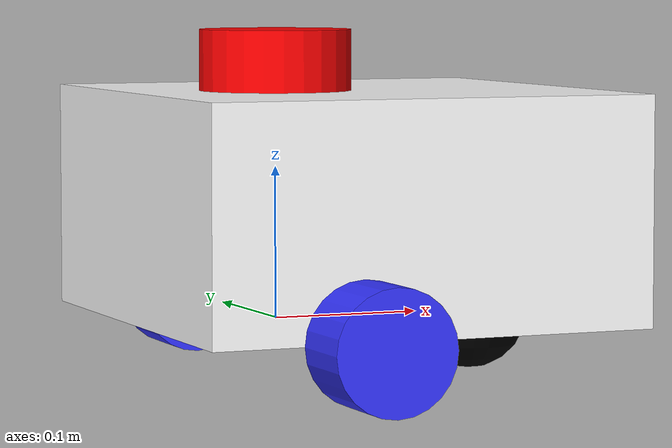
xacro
<?xml version="1.0"?>
<robot xmlns:xacro="http://www.ros.org/wiki/xacro"  name="robot">
    <xacro:include filename="robot_core.xacro" />

    <xacro:include filename="ros2_control.xacro"/>

    <xacro:include filename="lidar.xacro"/>

    <xacro:include filename="depth_camera.xacro"/>

</robot>

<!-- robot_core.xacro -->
<robot xmlns:xacro="http://www.ros.org/wiki/xacro" >

    <xacro:include filename="inertial_macros.xacro"/>

    <material  name="white">
        <color rgba="1 1 1 1"/>
    </material>

    <material  name="orange">
        <color rgba="1 0.3 0.1 1"/>
    </material>

    <material  name="blue">
        <color rgba="0.2 0.2 1 1"/>

    </material>

    <material  name="black">
        <color rgba="0 0 0 1"/>
    </material>

    <material  name="red">
        <color rgba="1 0 0 1"/>
    </material>

    <!-- orientation is front = +x left = +y up = +z-->
    <!-- BASE LINK -->

    <link name="base_link">

    </link>

    <!-- BASE FOOTPRINT LINK-->
    <joint name="base_footprint_joint" type="fixed">
        <parent link="base_link"/>
        <child link="base_footprint"/>
        <origin xyz="0.0 0.0 0.0" rpy="0.0 0.0 0.0"/>

    </joint>

    <link name="base_footprint">

    </link>

    <!-- CHASSIS LINK-->

    <joint name="chassis_join" type="fixed">
        <parent link="base_link"/>
        <child link="chassis"/>     <!-- Why does this one not have a white arrow, could cause an error -->
        <origin xyz="-0.1 0.0 0.0"/>

    </joint>

    <link name="chassis">
        <visual>
            <origin xyz="0.15 0.0 0.075" rpy="0.0 0.0 0.0"/>
            <geometry>
                <box size="0.3 0.3 0.15"/>
            </geometry>
            <material name="white"/>
        </visual>
        <collision>
            <origin xyz="0.15 0.0 0.075" rpy="0.0 0.0 0.0"/>
            <geometry>
                <box size="0.3 0.3 0.15"/>
            </geometry>
        </collision>
        <xacro:inertial_box mass="0.5" x="0.3" y="0.3" z="0.15">
            <origin xyz="0.15 0 0.075" rpy="0 0 0"/>
        </xacro:inertial_box>

    </link>
    <gazebo reference ="chassis">
        <material> Gazebe/White </material>
    </gazebo>

    <!-- LEFT WHEEL LINK -->

    <joint name="left_wheel_joint" type="continuous">
        <parent link="base_link"/>
        <child link="left_wheel"/>
        <origin xyz="0 0.175 0.0" rpy="-${pi/2} 0.0 0.0"/>
        <axis xyz="0.0 0.0 1"/>

    </joint>

    <link name="left_wheel">
        <visual>
            <geometry>
                <cylinder radius="0.04" length="0.05"/>
            </geometry>
            <material name="blue"/>
        </visual>
        <collision>
           <geometry>
                <cylinder radius="0.04" length="0.05"/>
            </geometry>
        </collision>
        <xacro:inertial_cylinder mass="0.1" length="0.05" radius="0.05">
            <origin xyz="0 0 0" rpy="0 0 0"/>
        </xacro:inertial_cylinder>
    </link>

    <gazebo reference ="left_wheel">
        <material> Gazebo/Blue </material>
    </gazebo>

    <!-- RIGHT WHEEL LINK -->

    <joint name="right_wheel_joint" type="continuous">
        <parent link="base_link"/>
        <child link="right_wheel"/>
        <origin xyz="0 -0.175 0.0" rpy="${pi/2} 0.0 0.0"/>
        <axis xyz="0.0 0.0 -1"/>

    </joint>

    <link name="right_wheel">
        <visual>
            <geometry>
                <cylinder radius="0.04" length="0.05"/>
            </geometry>
            <material name="blue"/>
        </visual>
        <collision>
            <geometry>
                <cylinder radius="0.04" length="0.05"/>
            </geometry>
        </collision>
        <xacro:inertial_cylinder mass="0.1" length="0.05" radius="0.05">
            <origin xyz="0 0 0" rpy="0 0 0"/>
        </xacro:inertial_cylinder>
    </link>

    <gazebo reference ="right_wheel">
        <material> Gazebo/Blue </material>
    </gazebo>

    <!--CASTER WHEEL-->
    <joint name="caster_wheel_joint" type="fixed">
        <parent link="chassis"/>
        <child link="caster_wheel"/>
        <origin xyz="0.24 0.0 0.0" rpy="0.0 0.0 0.0"/>

    </joint>

    <link name="caster_wheel">
        <visual>
            <geometry>
                <sphere radius="0.04"/>
            </geometry>
            <material name="black"/>
        </visual>
        <collision>
             <geometry>
                <sphere radius="0.04"/>
            </geometry>
        </collision>
        <xacro:inertial_sphere mass="0.1" radius="0.04">
            <origin xyz="0 0 0" rpy="0 0 0"/>
        </xacro:inertial_sphere>
    </link>

    <gazebo reference ="caster_wheel">
        <material> Gazebo/Black </material>
        <mu1 value="0.001"/>
        <mu2 value="0.001"/>
    </gazebo>

</robot>

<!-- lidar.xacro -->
<robot xmlns:xacro="http://www.ros.org/wiki/xacro">

    <joint name="laser_joint" type="fixed">
        <parent link="chassis"/>
        <child link="laser_frame"/>
        <origin xyz="0.1 0.0 0.17" rpy="0.0 0.0 0.0"/>

    </joint>

    <link name="laser_frame">
        <visual>
            <geometry>
                <cylinder radius="0.05" length="0.04"/>
            </geometry>
            <material name="red"/>
        </visual>
        <collision>
            <geometry>
                <cylinder radius="0.05" length="0.04"/>
            </geometry>
        </collision>
        <xacro:inertial_cylinder mass="0.1" length="0.04" radius="0.05">
            <origin xyz="0 0 0" rpy="0 0 0"/>
        </xacro:inertial_cylinder>
    </link>

    <gazebo reference="laser_frame">
        <material>
            Gazebo/Red
        </material>
        <sensor name="laser" type="ray">
            <pose> 0 0 0 0 0 0 </pose>
            <visualize>true</visualize>
            <update_rate>10</update_rate>
            <ray>
                <scan>
                    <horizontal>
                        <sample>360</sample>
                        <resolution>1</resolution>
                        <min_angle>-3.14</min_angle>
                        <max_angle>3.14</max_angle>
                    </horizontal>
                </scan>
                <range>
                    <min>0.3</min>
                    <max>12</max>
                    <resolution>0.01</resolution>
                </range>
            </ray>
            <plugin name="laser_controller" filename="libgazebo_ros_ray_sensor.so">
                <ros>
                    <argument>~/out:=scan</argument>
                </ros>
                <output_type>sensor_msgs/LaserScan</output_type>
                <frame_name>laser_frame</frame_name>
            </plugin>
        </sensor>
    </gazebo>

</robot>

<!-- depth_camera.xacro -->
<robot xmlns:xacro="http://www.ros.org/wiki/xacro">

    <joint name="camera_joint" type="fixed">
        <parent link="chassis"/>
        <child link="camera_link"/>
        <origin xyz="0.305 0.0 0.08" rpy="0.0 0.0 0.0"/>

    </joint>

    <link name="camera_link">
        <visual>
            <geometry>
                <box size="0.010 0.03 0.03"/>
            </geometry>
            <material name="red"/>
        </visual>

    </link>

    <joint name="camera_optical_joint" type="fixed">
        <parent link="camera_link"/>
        <child link="camera_link_optical"/>
        <origin xyz="0.0 0.0 0.0" rpy="${-pi/2} 0.0 ${-pi/2}"/>

    </joint>

    <link name="camera_link_optical"></link>

    <gazebo reference="camera_link">
        <material>
            Gazebo/Red
        </material>
        <sensor type="depth" name="camera">
            <pose> 0 0 0 0 0 0 </pose>
            <visualize>true</visualize>
            <update_rate>10</update_rate>
            <camera>
                <horizontal_fov>1.089</horizontal_fov>
                <image>
                    <format>B8G8R8</format>
                    <width>640</width>
                    <height>480</height>
                </image>
                <clip>
                    <near>0.05</near>
                    <far>8.0</far>
                </clip>
            </camera>

            <plugin name="camera_controller" filename="libgazebo_ros_camera.so">
                <frame_name>camera_link_optical</frame_name>
                <min_depth>0.1</min_depth>
                <max_depth>100.0</max_depth>
            </plugin>
        </sensor>
    </gazebo>

</robot>
